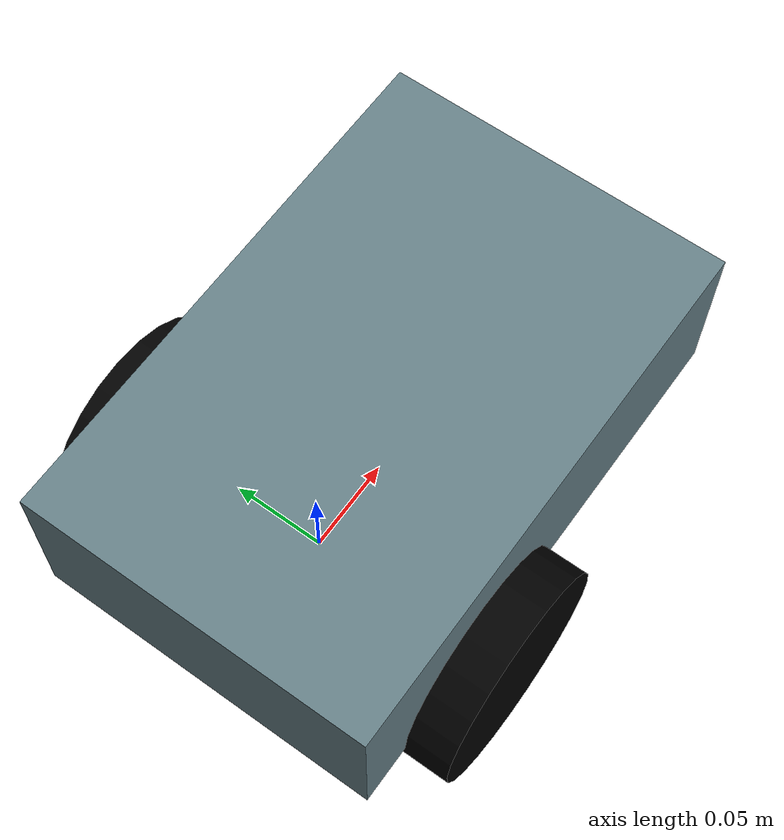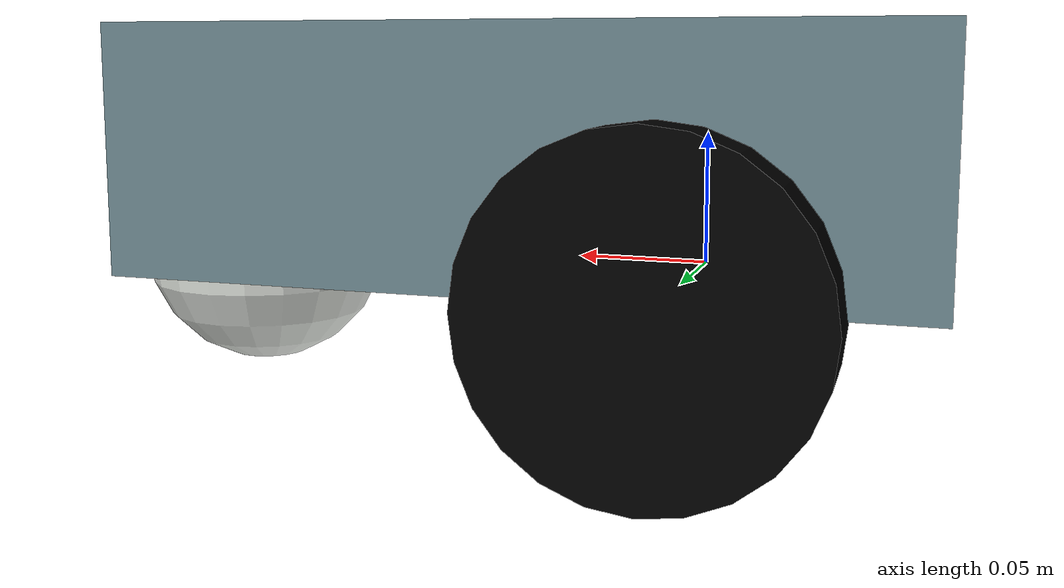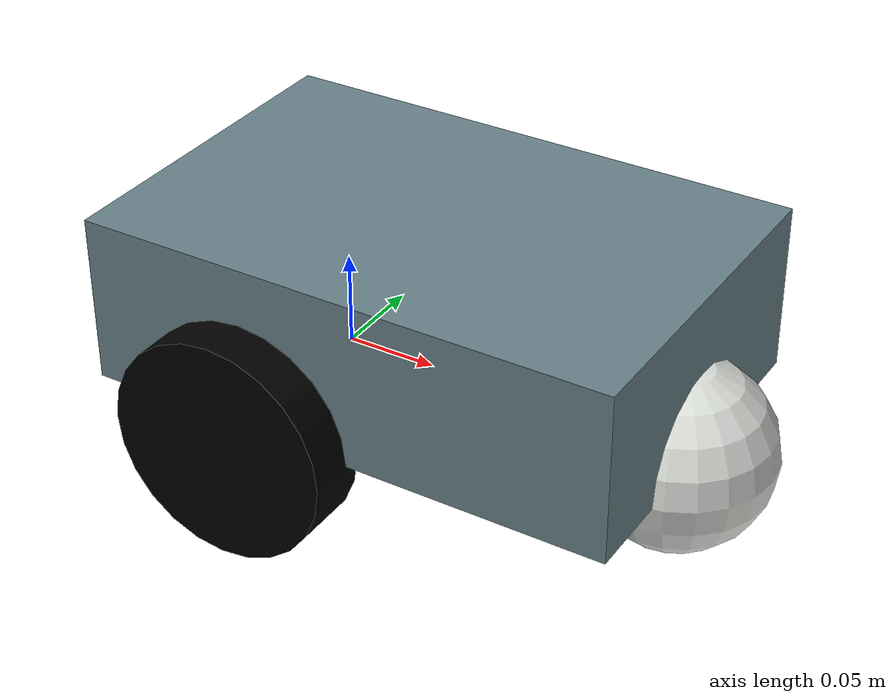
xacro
<?xml version="1.0"?>
<robot xmlns:xacro="http://www.ros.org/wiki/xacro">

    <material name="white">
        <color rgba="1 1 1 1"/>
    </material>

    <material name="orange">
        <color rgba="1 0.3 0.1 1"/>
    </material>

    <material name="blue">
        <color rgba="0.2 0.2 1 1"/>
    </material>

    <material name="black">
        <color rgba="0 0 0 1"/>
    </material>

    <material name="grey">
        <color rgba="0.40 0.50 0.530 1"/>
    </material>

    <material name="lightgrey" >
        <color rgba="0.8470588235294118 0.8627450980392157 0.8392156862745098 1.0" />
    </material>

    <material name="red">
        <color rgba="1 0 0 1"/>
    </material>

    <material name="greyishteal" >
        <color rgba="0.44313725490196076 0.6235294117647059 0.5686274509803921 1.0" />
    </material>

    <link name="base_link">
    </link>

    <joint name="chassis_joint" type="fixed">
        <parent link="base_link"/>
        <child link="chassis"/>
        <origin xyz="-0.090 0 0"/>
    </joint>

    <link name="chassis">
        <visual>
            <origin xyz="0.145 0 0.0455" rpy="0 0 0"/>
            <geometry>
               <box size="0.290 0.190 0.091"/>
            </geometry>
            <material name="grey"/>
        </visual>

    </link>

        <!-- LEFT WHEEL -->

    <joint name="left_wheel_joint" type="continuous">
        <parent link="base_link"/>
        <child link="left_wheel"/>
        <origin xyz="0 0.102 0" rpy="-${pi/2} 0 0"/>
        <axis xyz="0 0 1"/>
    </joint>

    <link name="left_wheel">
        <visual>
            <geometry>
                <cylinder length="0.033" radius="0.060" />
            </geometry>
            <material name="black"/>
        </visual>
    </link>

    <!-- RIGHT WHEEL -->

    <joint name="right_wheel_joint" type="continuous">
        <parent link="base_link"/>
        <child link="right_wheel"/>
        <origin xyz="0 -0.102 0" rpy="-${pi/2} 0 ${pi}"/>
        <axis xyz="0 0 -1"/>
    </joint>

    <link name="right_wheel">
        <visual>
            <geometry>
                <cylinder length="0.034" radius="0.060" />
            </geometry>
            <material name="black"/>
        </visual>
    </link>

    <!-- CASTER WHEEL -->

    <joint name="caster_wheel_joint" type="fixed">
        <parent link="chassis"/>
        <child link="caster_wheel"/>
        <origin xyz="0.280 0 0" rpy="0 0 0"/>
    </joint>

    <link name="caster_wheel">
        <visual>
            <geometry>
                <sphere radius="0.05" />
            </geometry>
            <material name="lightgrey"/>
        </visual>
    </link>

</robot>
